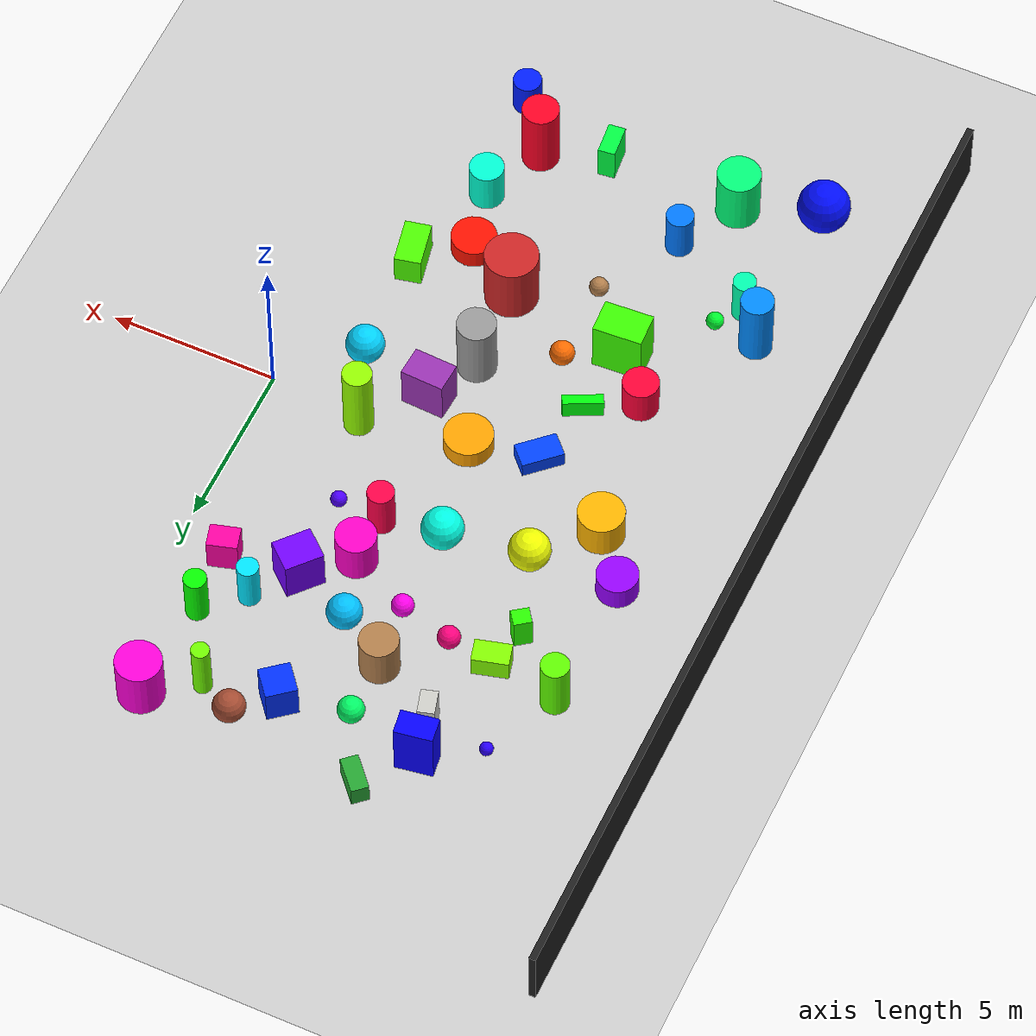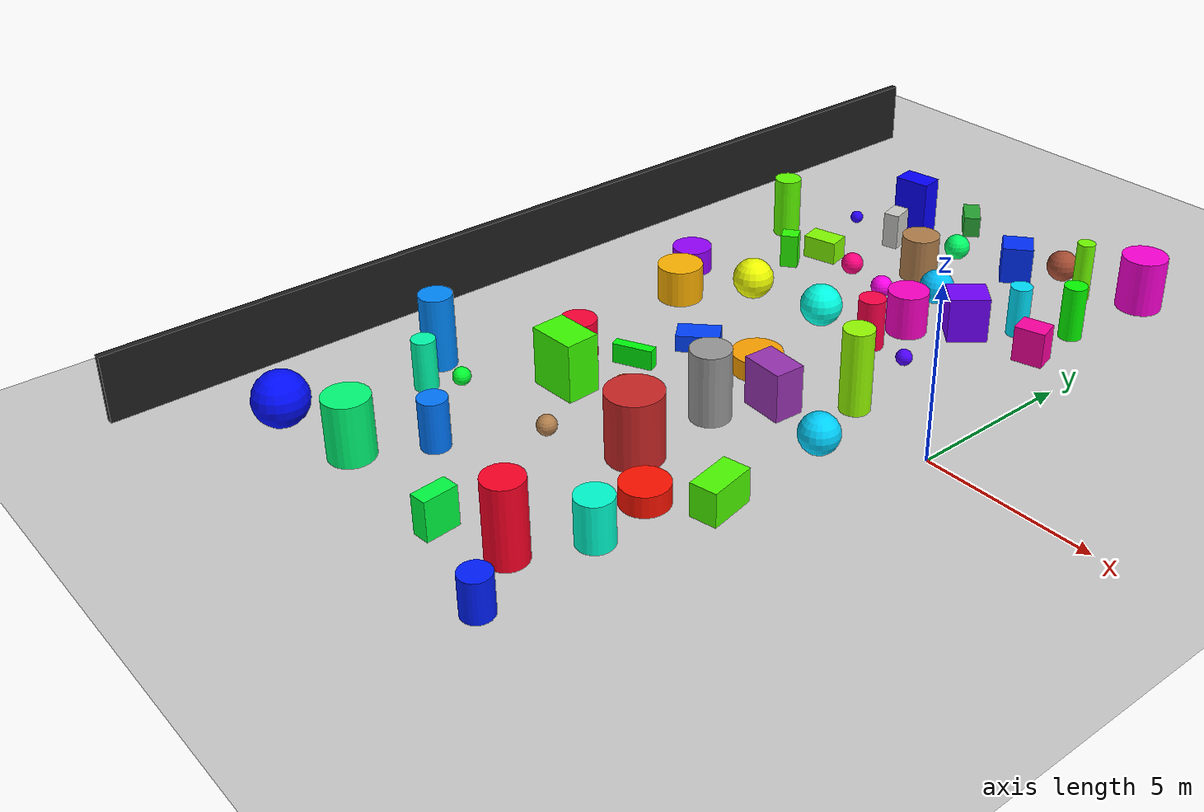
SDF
<sdf version="1.6">
 <world name="colorful_obstacle_world">
  <include><uri>model://ground_plane</uri></include>
  <include><uri>model://sun</uri></include>
  <model name="wall_south">
   <static>true</static>
   <pose>-15 0 1.0 0 0 0</pose>
   <link name="link">
    <collision name="c"><geometry><box><size>0.2 30 2.0</size></box></geometry></collision>
    <visual name="v">
     <geometry><box><size>0.2 30 2.0</size></box></geometry>
     <material>
      <script><uri>file://media/materials/scripts/gazebo.material</uri><name>Gazebo/Black</name></script>
     </material>
    </visual>
   </link>
  </model>
  <model name="obstacle_0">
   <static>true</static>
   <pose>-4.903450618988115 -5.467796159845311 0.9747297647664234 0 0 0</pose>
   <link name="link">
    <collision name="c">
     <geometry>
      <cylinder><radius>0.7912607310075801</radius><length>1.9494595295328467</length></cylinder>
     </geometry>
    </collision>
    <visual name="v">
     <geometry>
      <cylinder><radius>0.7912607310075801</radius><length>1.9494595295328467</length></cylinder>
     </geometry>
     <material>
      <script><uri>file://media/materials/scripts/gazebo.material</uri><name>Gazebo/Red</name></script>
     </material>
    </visual>
   </link>
  </model>
  <model name="obstacle_1">
   <static>true</static>
   <pose>-7.915639092148923 11.112011881021104 0.3309173274548305 0 0 0.7312801263284102</pose>
   <link name="link">
    <collision name="c">
     <geometry><box><size>0.5164150497879582 1.0709003932753725 0.661834654909661</size></box></geometry>
    </collision>
    <visual name="v">
     <geometry><box><size>0.5164150497879582 1.0709003932753725 0.661834654909661</size></box></geometry>
     <material>
      <script><uri>file://media/materials/scripts/gazebo.material</uri><name>Gazebo/Green</name></script>
     </material>
    </visual>
   </link>
  </model>
  <model name="obstacle_4">
   <static>true</static>
   <pose>-4.29777635401576 -1.2550370841254601 0.7156850672333379 0 0 3.090084387168104</pose>
   <link name="link">
    <collision name="c">
     <geometry><box><size>1.2932784040043348 0.8891995948181806 1.4313701344666758</size></box></geometry>
    </collision>
    <visual name="v">
     <geometry><box><size>1.2932784040043348 0.8891995948181806 1.4313701344666758</size></box></geometry>
     <material>
      <script><uri>file://media/materials/scripts/gazebo.material</uri><name>Gazebo/Purple</name></script>
     </material>
    </visual>
   </link>
  </model>
  <model name="obstacle_7">
   <static>true</static>
   <pose>-5.049072753003083 -2.8164600338689674 1.0385451915712363 0 0 0</pose>
   <link name="link">
    <collision name="c">
     <geometry>
      <cylinder><radius>0.573277827116216</radius><length>2.0770903831424725</length></cylinder>
     </geometry>
    </collision>
    <visual name="v">
     <geometry>
      <cylinder><radius>0.573277827116216</radius><length>2.0770903831424725</length></cylinder>
     </geometry>
     <material>
      <script><uri>file://media/materials/scripts/gazebo.material</uri><name>Gazebo/Grey</name></script>
     </material>
    </visual>
   </link>
  </model>
  <model name="obstacle_9">
   <static>true</static>
   <pose>-7.12972791184355 -6.591761434864928 0.28421537278958064 0 0 0</pose>
   <link name="link">
    <collision name="c"><geometry><sphere><radius>0.28421537278958064</radius></sphere></geometry></collision>
    <visual name="v">
     <geometry><sphere><radius>0.28421537278958064</radius></sphere></geometry>
     <material>
      <script><uri>file://media/materials/scripts/gazebo.material</uri><name>Gazebo/Wood</name></script>
     </material>
    </visual>
   </link>
  </model>
  <model name="obstacle_10">
   <static>true</static>
   <pose>-6.879492044702194 7.392906852079381 0.6924905468520671 0 0 0</pose>
   <link name="link">
    <collision name="c">
     <geometry>
      <cylinder><radius>0.5709947475166649</radius><length>1.3849810937041342</length></cylinder>
     </geometry>
    </collision>
    <visual name="v">
     <geometry>
      <cylinder><radius>0.5709947475166649</radius><length>1.3849810937041342</length></cylinder>
     </geometry>
     <material>
      <script><uri>file://media/materials/scripts/gazebo.material</uri><name>Gazebo/WoodFloor</name></script>
     </material>
    </visual>
   </link>
  </model>
  <model name="obstacle_11">
   <static>true</static>
   <pose>-8.870609132728818 8.49051728814381 0.5691840922277639 0 0 0.277794428375654</pose>
   <link name="link">
    <collision name="c">
     <geometry><box><size>0.495072684962762 0.7311331010637301 1.1383681844555278</size></box></geometry>
    </collision>
    <visual name="v">
     <geometry><box><size>0.495072684962762 0.7311331010637301 1.1383681844555278</size></box></geometry>
     <material>
      <script><uri>file://media/materials/scripts/gazebo.material</uri><name>Gazebo/CeilingTiled</name></script>
     </material>
    </visual>
   </link>
  </model>
  <model name="obstacle_14">
   <static>true</static>
   <pose>-3.8348799675712684 10.525184868427608 0.47494589489425343 0 0 0</pose>
   <link name="link">
    <collision name="c"><geometry><sphere><radius>0.47494589489425343</radius></sphere></geometry></collision>
    <visual name="v">
     <geometry><sphere><radius>0.47494589489425343</radius></sphere></geometry>
     <material>
      <script><uri>file://media/materials/scripts/gazebo.material</uri><name>Gazebo/Bricks</name></script>
     </material>
    </visual>
   </link>
  </model>
  <model name="obstacle_16">
   <static>true</static>
   <pose>-3.2222321565056795 -6.524059201168073 0.30241089847937985 0 0 0</pose>
   <link name="link">
    <collision name="c">
     <geometry>
      <cylinder><radius>0.6693281410612415</radius><length>0.6048217969587597</length></cylinder>
     </geometry>
    </collision>
    <visual name="v">
     <geometry>
      <cylinder><radius>0.6693281410612415</radius><length>0.6048217969587597</length></cylinder>
     </geometry>
     <material>
      <ambient>1 0.07058823529411762 0 1.0</ambient>
      <diffuse>1 0.07058823529411762 0 1.0</diffuse>
     </material>
    </visual>
   </link>
  </model>
  <model name="obstacle_21">
   <static>true</static>
   <pose>-7.157682839931182 -4.011880523422204 0.36426826249821365 0 0 0</pose>
   <link name="link">
    <collision name="c"><geometry><sphere><radius>0.36426826249821365</radius></sphere></geometry></collision>
    <visual name="v">
     <geometry><sphere><radius>0.36426826249821365</radius></sphere></geometry>
     <material>
      <ambient>1 0.42352941176470593 0 1.0</ambient>
      <diffuse>1 0.42352941176470593 0 1.0</diffuse>
     </material>
    </visual>
   </link>
  </model>
  <model name="obstacle_24">
   <static>true</static>
   <pose>-5.989385847194059 -0.24685178705698618 0.2957249704937639 0 0 0</pose>
   <link name="link">
    <collision name="c">
     <geometry>
      <cylinder><radius>0.7226604071419616</radius><length>0.5914499409875278</length></cylinder>
     </geometry>
    </collision>
    <visual name="v">
     <geometry>
      <cylinder><radius>0.7226604071419616</radius><length>0.5914499409875278</length></cylinder>
     </geometry>
     <material>
      <ambient>1 0.6352941176470588 0 1.0</ambient>
      <diffuse>1 0.6352941176470588 0 1.0</diffuse>
     </material>
    </visual>
   </link>
  </model>
  <model name="obstacle_25">
   <static>true</static>
   <pose>-10.594377490643883 0.8874019886822815 0.5559189496063643 0 0 0</pose>
   <link name="link">
    <collision name="c">
     <geometry>
      <cylinder><radius>0.6796305076136844</radius><length>1.1118378992127287</length></cylinder>
     </geometry>
    </collision>
    <visual name="v">
     <geometry>
      <cylinder><radius>0.6796305076136844</radius><length>1.1118378992127287</length></cylinder>
     </geometry>
     <material>
      <ambient>1 0.7058823529411764 0 1.0</ambient>
      <diffuse>1 0.7058823529411764 0 1.0</diffuse>
     </material>
    </visual>
   </link>
  </model>
  <model name="obstacle_30">
   <static>true</static>
   <pose>-9.178125538358785 2.562079408086774 0.6128212991396255 0 0 0</pose>
   <link name="link">
    <collision name="c"><geometry><sphere><radius>0.6128212991396255</radius></sphere></geometry></collision>
    <visual name="v">
     <geometry><sphere><radius>0.6128212991396255</radius></sphere></geometry>
     <material>
      <ambient>0.9411764705882353 1 0 1.0</ambient>
      <diffuse>0.9411764705882353 1 0 1.0</diffuse>
     </material>
    </visual>
   </link>
  </model>
  <model name="obstacle_35">
   <static>true</static>
   <pose>-2.858048363759572 0.3581557226500358 1.226844228479198 0 0 0</pose>
   <link name="link">
    <collision name="c">
     <geometry>
      <cylinder><radius>0.4326092372015556</radius><length>2.453688456958396</length></cylinder>
     </geometry>
    </collision>
    <visual name="v">
     <geometry>
      <cylinder><radius>0.4326092372015556</radius><length>2.453688456958396</length></cylinder>
     </geometry>
     <material>
      <ambient>0.5882352941176472 1 0 1.0</ambient>
      <diffuse>0.5882352941176472 1 0 1.0</diffuse>
     </material>
    </visual>
   </link>
  </model>
  <model name="obstacle_36">
   <static>true</static>
   <pose>-9.666450148703099 6.084782307992231 0.35592853904838884 0 0 0.26171114276346485</pose>
   <link name="link">
    <collision name="c">
     <geometry><box><size>1.0704525786526238 0.6787140310253099 0.7118570780967777</size></box></geometry>
    </collision>
    <visual name="v">
     <geometry><box><size>1.0704525786526238 0.6787140310253099 0.7118570780967777</size></box></geometry>
     <material>
      <ambient>0.5176470588235296 1 0 1.0</ambient>
      <diffuse>0.5176470588235296 1 0 1.0</diffuse>
     </material>
    </visual>
   </link>
  </model>
  <model name="obstacle_37">
   <static>true</static>
   <pose>-2.750470761163509 9.985135469432478 0.9206019093199403 0 0 0</pose>
   <link name="link">
    <collision name="c">
     <geometry>
      <cylinder><radius>0.26511309561404356</radius><length>1.8412038186398807</length></cylinder>
     </geometry>
    </collision>
    <visual name="v">
     <geometry>
      <cylinder><radius>0.26511309561404356</radius><length>1.8412038186398807</length></cylinder>
     </geometry>
     <material>
      <ambient>0.44705882352941173 1 0 1.0</ambient>
      <diffuse>0.44705882352941173 1 0 1.0</diffuse>
     </material>
    </visual>
   </link>
  </model>
  <model name="obstacle_38">
   <static>true</static>
   <pose>-11.723073514598404 6.41772675854239 0.9526029472143182 0 0 0</pose>
   <link name="link">
    <collision name="c">
     <geometry>
      <cylinder><radius>0.41404371130326817</radius><length>1.9052058944286363</length></cylinder>
     </geometry>
    </collision>
    <visual name="v">
     <geometry>
      <cylinder><radius>0.41404371130326817</radius><length>1.9052058944286363</length></cylinder>
     </geometry>
     <material>
      <ambient>0.3764705882352941 1 0 1.0</ambient>
      <diffuse>0.3764705882352941 1 0 1.0</diffuse>
     </material>
    </visual>
   </link>
  </model>
  <model name="obstacle_39">
   <static>true</static>
   <pose>-1.8596548976918221 -5.330542317407487 0.48957493002747765 0 0 1.7774144920807824</pose>
   <link name="link">
    <collision name="c">
     <geometry><box><size>1.3742544341441902 0.7874833772978775 0.9791498600549553</size></box></geometry>
    </collision>
    <visual name="v">
     <geometry><box><size>1.3742544341441902 0.7874833772978775 0.9791498600549553</size></box></geometry>
     <material>
      <ambient>0.3058823529411765 1 0 1.0</ambient>
      <diffuse>0.3058823529411765 1 0 1.0</diffuse>
     </material>
    </visual>
   </link>
  </model>
  <model name="obstacle_40">
   <static>true</static>
   <pose>-8.681199181339132 -4.7957398026556435 0.8692538034315253 0 0 0.05615220280662781</pose>
   <link name="link">
    <collision name="c">
     <geometry><box><size>1.467090281856178 1.015625908239326 1.7385076068630505</size></box></geometry>
    </collision>
    <visual name="v">
     <geometry><box><size>1.467090281856178 1.015625908239326 1.7385076068630505</size></box></geometry>
     <material>
      <ambient>0.23529411764705888 1 0 1.0</ambient>
      <diffuse>0.23529411764705888 1 0 1.0</diffuse>
     </material>
    </visual>
   </link>
  </model>
  <model name="obstacle_41">
   <static>true</static>
   <pose>-10.007644813107511 4.901586982433734 0.5326721974599139 0 0 2.2065311500129843</pose>
   <link name="link">
    <collision name="c">
     <geometry><box><size>0.4875249507501621 0.5321848356458874 1.0653443949198278</size></box></geometry>
    </collision>
    <visual name="v">
     <geometry><box><size>0.4875249507501621 0.5321848356458874 1.0653443949198278</size></box></geometry>
     <material>
      <ambient>0.16470588235294104 1 0 1.0</ambient>
      <diffuse>0.16470588235294104 1 0 1.0</diffuse>
     </material>
    </visual>
   </link>
  </model>
  <model name="obstacle_43">
   <static>true</static>
   <pose>-1.5256717788413159 7.867368636240446 0.8227146118231784 0 0 0</pose>
   <link name="link">
    <collision name="c">
     <geometry>
      <cylinder><radius>0.3338688926091794</radius><length>1.6454292236463568</length></cylinder>
     </geometry>
    </collision>
    <visual name="v">
     <geometry>
      <cylinder><radius>0.3338688926091794</radius><length>1.6454292236463568</length></cylinder>
     </geometry>
     <material>
      <ambient>0.0235294117647058 1 0 1.0</ambient>
      <diffuse>0.0235294117647058 1 0 1.0</diffuse>
     </material>
    </visual>
   </link>
  </model>
  <model name="obstacle_44">
   <static>true</static>
   <pose>-8.41675700353324 -2.659838162897117 0.3023187942179295 0 0 2.025061365115131</pose>
   <link name="link">
    <collision name="c">
     <geometry><box><size>0.30721562770138056 1.1890429840903445 0.604637588435859</size></box></geometry>
    </collision>
    <visual name="v">
     <geometry><box><size>0.30721562770138056 1.1890429840903445 0.604637588435859</size></box></geometry>
     <material>
      <ambient>0 1 0.04705882352941204 1.0</ambient>
      <diffuse>0 1 0.04705882352941204 1.0</diffuse>
     </material>
    </visual>
   </link>
  </model>
  <model name="obstacle_46">
   <static>true</static>
   <pose>-10.607099281396573 -6.911946364490519 0.2596335199203611 0 0 0</pose>
   <link name="link">
    <collision name="c"><geometry><sphere><radius>0.2596335199203611</radius></sphere></geometry></collision>
    <visual name="v">
     <geometry><sphere><radius>0.2596335199203611</radius></sphere></geometry>
     <material>
      <ambient>0 1 0.18823529411764683 1.0</ambient>
      <diffuse>0 1 0.18823529411764683 1.0</diffuse>
     </material>
    </visual>
   </link>
  </model>
  <model name="obstacle_47">
   <static>true</static>
   <pose>-5.5531273336728 -10.935673423529792 0.5698644881736914 0 0 1.6713069602277932</pose>
   <link name="link">
    <collision name="c">
     <geometry><box><size>0.9869404275487976 0.5096040743178923 1.1397289763473828</size></box></geometry>
    </collision>
    <visual name="v">
     <geometry><box><size>0.9869404275487976 0.5096040743178923 1.1397289763473828</size></box></geometry>
     <material>
      <ambient>0 1 0.2588235294117647 1.0</ambient>
      <diffuse>0 1 0.2588235294117647 1.0</diffuse>
     </material>
    </visual>
   </link>
  </model>
  <model name="obstacle_49">
   <static>true</static>
   <pose>-6.876984763720421 9.187541689341803 0.39188868128012677 0 0 0</pose>
   <link name="link">
    <collision name="c"><geometry><sphere><radius>0.39188868128012677</radius></sphere></geometry></collision>
    <visual name="v">
     <geometry><sphere><radius>0.39188868128012677</radius></sphere></geometry>
     <material>
      <ambient>0 1 0.3999999999999999 1.0</ambient>
      <diffuse>0 1 0.3999999999999999 1.0</diffuse>
     </material>
    </visual>
   </link>
  </model>
  <model name="obstacle_50">
   <static>true</static>
   <pose>-9.558379913323048 -10.906640171624947 0.8884228037856065 0 0 0</pose>
   <link name="link">
    <collision name="c">
     <geometry>
      <cylinder><radius>0.6436316761267209</radius><length>1.776845607571213</length></cylinder>
     </geometry>
    </collision>
    <visual name="v">
     <geometry>
      <cylinder><radius>0.6436316761267209</radius><length>1.776845607571213</length></cylinder>
     </geometry>
     <material>
      <ambient>0 1 0.47058823529411775 1.0</ambient>
      <diffuse>0 1 0.47058823529411775 1.0</diffuse>
     </material>
    </visual>
   </link>
  </model>
  <model name="obstacle_53">
   <static>true</static>
   <pose>-11.14794426483169 -7.699911957670887 0.74658524982691 0 0 0</pose>
   <link name="link">
    <collision name="c">
     <geometry><cylinder><radius>0.3394169805684647</radius><length>1.49317049965382</length></cylinder></geometry>
    </collision>
    <visual name="v">
     <geometry><cylinder><radius>0.3394169805684647</radius><length>1.49317049965382</length></cylinder></geometry>
     <material>
      <ambient>0 1 0.6823529411764704 1.0</ambient>
      <diffuse>0 1 0.6823529411764704 1.0</diffuse>
     </material>
    </visual>
   </link>
  </model>
  <model name="obstacle_55">
   <static>true</static>
   <pose>-2.7571544155560126 -8.39493488044194 0.6763021480405876 0 0 0</pose>
   <link name="link">
    <collision name="c">
     <geometry>
      <cylinder><radius>0.5104032043630015</radius><length>1.3526042960811753</length></cylinder>
     </geometry>
    </collision>
    <visual name="v">
     <geometry>
      <cylinder><radius>0.5104032043630015</radius><length>1.3526042960811753</length></cylinder>
     </geometry>
     <material>
      <ambient>0 1 0.8235294117647056 1.0</ambient>
      <diffuse>0 1 0.8235294117647056 1.0</diffuse>
     </material>
    </visual>
   </link>
  </model>
  <model name="obstacle_56">
   <static>true</static>
   <pose>-6.686724418479256 2.9295764532416406 0.6181281892501773 0 0 0</pose>
   <link name="link">
    <collision name="c"><geometry><sphere><radius>0.6181281892501773</radius></sphere></geometry></collision>
    <visual name="v">
     <geometry><sphere><radius>0.6181281892501773</radius></sphere></geometry>
     <material>
      <ambient>0 1 0.8941176470588235 1.0</ambient>
      <diffuse>0 1 0.8941176470588235 1.0</diffuse>
     </material>
    </visual>
   </link>
  </model>
  <model name="obstacle_59">
   <static>true</static>
   <pose>-2.6279223113654435 6.850610705014276 0.764941021038312 0 0 0</pose>
   <link name="link">
    <collision name="c">
     <geometry>
      <cylinder><radius>0.31768960259157486</radius><length>1.529882042076624</length></cylinder>
     </geometry>
    </collision>
    <visual name="v">
     <geometry>
      <cylinder><radius>0.31768960259157486</radius><length>1.529882042076624</length></cylinder>
     </geometry>
     <material>
      <ambient>0 0.8941176470588235 1 1.0</ambient>
      <diffuse>0 0.8941176470588235 1 1.0</diffuse>
     </material>
    </visual>
   </link>
  </model>
  <model name="obstacle_60">
   <static>true</static>
   <pose>-2.023969436867592 -1.824002909830245 0.568038024012756 0 0 0</pose>
   <link name="link">
    <collision name="c"><geometry><sphere><radius>0.568038024012756</radius></sphere></geometry></collision>
    <visual name="v">
     <geometry><sphere><radius>0.568038024012756</radius></sphere></geometry>
     <material>
      <ambient>0 0.8235294117647056 1 1.0</ambient>
      <diffuse>0 0.8235294117647056 1 1.0</diffuse>
     </material>
    </visual>
   </link>
  </model>
  <model name="obstacle_61">
   <static>true</static>
   <pose>-5.375933939765586 6.480713302358957 0.515744304451291 0 0 0</pose>
   <link name="link">
    <collision name="c"><geometry><sphere><radius>0.515744304451291</radius></sphere></geometry></collision>
    <visual name="v">
     <geometry><sphere><radius>0.515744304451291</radius></sphere></geometry>
     <material>
      <ambient>0 0.7529411764705882 1 1.0</ambient>
      <diffuse>0 0.7529411764705882 1 1.0</diffuse>
     </material>
    </visual>
   </link>
  </model>
  <model name="obstacle_64">
   <static>true</static>
   <pose>-11.928732317024014 -6.762260210160146 1.1013993177631807 0 0 0</pose>
   <link name="link">
    <collision name="c">
     <geometry>
      <cylinder><radius>0.48523813500543955</radius><length>2.2027986355263613</length></cylinder>
     </geometry>
    </collision>
    <visual name="v">
     <geometry>
      <cylinder><radius>0.48523813500543955</radius><length>2.2027986355263613</length></cylinder>
     </geometry>
     <material>
      <ambient>0 0.5411764705882351 1 1.0</ambient>
      <diffuse>0 0.5411764705882351 1 1.0</diffuse>
     </material>
    </visual>
   </link>
  </model>
  <model name="obstacle_65">
   <static>true</static>
   <pose>-8.534033255315771 -9.069541155267501 0.7308941327298949 0 0 0</pose>
   <link name="link">
    <collision name="c">
     <geometry>
      <cylinder><radius>0.40595374409733187</radius><length>1.4617882654597898</length></cylinder>
     </geometry>
    </collision>
    <visual name="v">
     <geometry>
      <cylinder><radius>0.40595374409733187</radius><length>1.4617882654597898</length></cylinder>
     </geometry>
     <material>
      <ambient>0 0.47058823529411775 1 1.0</ambient>
      <diffuse>0 0.47058823529411775 1 1.0</diffuse>
     </material>
    </visual>
   </link>
  </model>
  <model name="obstacle_68">
   <static>true</static>
   <pose>-7.988560681484515 -0.6510499418724738 0.2534570576735624 0 0 0.7545502177018751</pose>
   <link name="link">
    <collision name="c">
     <geometry><box><size>1.2568226405057346 0.7450783001839563 0.5069141153471248</size></box></geometry>
    </collision>
    <visual name="v">
     <geometry><box><size>1.2568226405057346 0.7450783001839563 0.5069141153471248</size></box></geometry>
     <material>
      <ambient>0 0.2588235294117647 1 1.0</ambient>
      <diffuse>0 0.2588235294117647 1 1.0</diffuse>
     </material>
    </visual>
   </link>
  </model>
  <model name="obstacle_69">
   <static>true</static>
   <pose>-4.879189284578182 9.586061336729486 0.578510797063936 0 0 0.6881705408708432</pose>
   <link name="link">
    <collision name="c">
     <geometry><box><size>0.9197537496714745 0.9222067024388136 1.157021594127872</size></box></geometry>
    </collision>
    <visual name="v">
     <geometry><box><size>0.9197537496714745 0.9222067024388136 1.157021594127872</size></box></geometry>
     <material>
      <ambient>0 0.18823529411764683 1 1.0</ambient>
      <diffuse>0 0.18823529411764683 1 1.0</diffuse>
     </material>
    </visual>
   </link>
  </model>
  <model name="obstacle_70">
   <static>true</static>
   <pose>-2.435498238829794 -11.882463217947851 0.570090661380665 0 0 0</pose>
   <link name="link">
    <collision name="c">
     <geometry>
      <cylinder><radius>0.42120162485587487</radius><length>1.14018132276133</length></cylinder>
     </geometry>
    </collision>
    <visual name="v">
     <geometry>
      <cylinder><radius>0.42120162485587487</radius><length>1.14018132276133</length></cylinder>
     </geometry>
     <material>
      <ambient>0 0.11764705882352944 1 1.0</ambient>
      <diffuse>0 0.11764705882352944 1 1.0</diffuse>
     </material>
    </visual>
   </link>
  </model>
  <model name="obstacle_71">
   <static>true</static>
   <pose>-11.963917480929334 -11.545603070126862 0.7802141088122077 0 0 0</pose>
   <link name="link">
    <collision name="c"><geometry><sphere><radius>0.7802141088122077</radius></sphere></geometry></collision>
    <visual name="v">
     <geometry><sphere><radius>0.7802141088122077</radius></sphere></geometry>
     <material>
      <ambient>0 0.0470588235294116 1 1.0</ambient>
      <diffuse>0 0.0470588235294116 1 1.0</diffuse>
     </material>
    </visual>
   </link>
  </model>
  <model name="obstacle_72">
   <static>true</static>
   <pose>-9.11844819084152 9.693982080730436 0.9222221426206227 0 0 0.15667329170219155</pose>
   <link name="link">
    <collision name="c">
     <geometry><box><size>1.1127926194920308 0.7234956179182417 1.8444442852412455</size></box></geometry>
    </collision>
    <visual name="v">
     <geometry><box><size>1.1127926194920308 0.7234956179182417 1.8444442852412455</size></box></geometry>
     <material>
      <ambient>0.0235294117647058 0 1 1.0</ambient>
      <diffuse>0.0235294117647058 0 1 1.0</diffuse>
     </material>
    </visual>
   </link>
  </model>
  <model name="obstacle_74">
   <static>true</static>
   <pose>-10.709078111081912 8.669358905692949 0.2000361601286657 0 0 0</pose>
   <link name="link">
    <collision name="c"><geometry><sphere><radius>0.2000361601286657</radius></sphere></geometry></collision>
    <visual name="v">
     <geometry><sphere><radius>0.2000361601286657</radius></sphere></geometry>
     <material>
      <ambient>0.16470588235294148 0 1 1.0</ambient>
      <diffuse>0.16470588235294148 0 1 1.0</diffuse>
     </material>
    </visual>
   </link>
  </model>
  <model name="obstacle_76">
   <static>true</static>
   <pose>-3.5325912588203785 3.0352891000949214 0.23810173041638966 0 0 0</pose>
   <link name="link">
    <collision name="c"><geometry><sphere><radius>0.23810173041638966</radius></sphere></geometry></collision>
    <visual name="v">
     <geometry><sphere><radius>0.23810173041638966</radius></sphere></geometry>
     <material>
      <ambient>0.30588235294117716 0 1 1.0</ambient>
      <diffuse>0.30588235294117716 0 1 1.0</diffuse>
     </material>
    </visual>
   </link>
  </model>
  <model name="obstacle_78">
   <static>true</static>
   <pose>-3.581627808830497 5.669460533878059 0.6820179792744875 0 0 0.8509024062958834</pose>
   <link name="link">
    <collision name="c">
     <geometry><box><size>1.158466173197453 0.9886747870364914 1.364035958548975</size></box></geometry>
    </collision>
    <visual name="v">
     <geometry><box><size>1.158466173197453 0.9886747870364914 1.364035958548975</size></box></geometry>
     <material>
      <ambient>0.44705882352941195 0 1 1.0</ambient>
      <diffuse>0.44705882352941195 0 1 1.0</diffuse>
     </material>
    </visual>
   </link>
  </model>
  <model name="obstacle_80">
   <static>true</static>
   <pose>-11.760175515093819 2.3711146283094315 0.38814258581662764 0 0 0</pose>
   <link name="link">
    <collision name="c">
     <geometry>
      <cylinder><radius>0.6062293769981756</radius><length>0.7762851716332553</length></cylinder>
     </geometry>
    </collision>
    <visual name="v">
     <geometry>
      <cylinder><radius>0.6062293769981756</radius><length>0.7762851716332553</length></cylinder>
     </geometry>
     <material>
      <ambient>0.5882352941176476 0 1 1.0</ambient>
      <diffuse>0.5882352941176476 0 1 1.0</diffuse>
     </material>
    </visual>
   </link>
  </model>
  <model name="obstacle_87">
   <static>true</static>
   <pose>-6.692878170822818 5.5224458510477135 0.32787802314404724 0 0 0</pose>
   <link name="link">
    <collision name="c"><geometry><sphere><radius>0.32787802314404724</radius></sphere></geometry></collision>
    <visual name="v">
     <geometry><sphere><radius>0.32787802314404724</radius></sphere></geometry>
     <material>
      <ambient>1 0 0.9176470588235297 1.0</ambient>
      <diffuse>1 0 0.9176470588235297 1.0</diffuse>
     </material>
    </visual>
   </link>
  </model>
  <model name="obstacle_88">
   <static>true</static>
   <pose>-1.3285300599611478 10.911304270238208 0.8357165585659772 0 0 0</pose>
   <link name="link">
    <collision name="c">
     <geometry>
      <cylinder><radius>0.6706250575367996</radius><length>1.6714331171319543</length></cylinder>
     </geometry>
    </collision>
    <visual name="v">
     <geometry>
      <cylinder><radius>0.6706250575367996</radius><length>1.6714331171319543</length></cylinder>
     </geometry>
     <material>
      <ambient>1 0 0.8470588235294114 1.0</ambient>
      <diffuse>1 0 0.8470588235294114 1.0</diffuse>
     </material>
    </visual>
   </link>
  </model>
  <model name="obstacle_89">
   <static>true</static>
   <pose>-4.808683901929816 4.542346407167518 0.6570441338235404 0 0 0</pose>
   <link name="link">
    <collision name="c">
     <geometry>
      <cylinder><radius>0.5964378645935621</radius><length>1.3140882676470809</length></cylinder>
     </geometry>
    </collision>
    <visual name="v">
     <geometry>
      <cylinder><radius>0.5964378645935621</radius><length>1.3140882676470809</length></cylinder>
     </geometry>
     <material><ambient>1 0 0.776470588235294 1.0</ambient><diffuse>1 0 0.776470588235294 1.0</diffuse></material>
    </visual>
   </link>
  </model>
  <model name="obstacle_91">
   <static>true</static>
   <pose>-1.439590736382275 5.976795289803292 0.5346091954195317 0 0 1.8511645246959276</pose>
   <link name="link">
    <collision name="c">
     <geometry><box><size>0.6926002479699682 0.8830218245552035 1.0692183908390633</size></box></geometry>
    </collision>
    <visual name="v">
     <geometry><box><size>0.6926002479699682 0.8830218245552035 1.0692183908390633</size></box></geometry>
     <material>
      <ambient>1 0 0.6352941176470592 1.0</ambient>
      <diffuse>1 0 0.6352941176470592 1.0</diffuse>
     </material>
    </visual>
   </link>
  </model>
  <model name="obstacle_93">
   <static>true</static>
   <pose>-8.294660662503212 5.927610076972719 0.3356612870596144 0 0 0</pose>
   <link name="link">
    <collision name="c"><geometry><sphere><radius>0.3356612870596144</radius></sphere></geometry></collision>
    <visual name="v">
     <geometry><sphere><radius>0.3356612870596144</radius></sphere></geometry>
     <material>
      <ambient>1 0 0.49411764705882355 1.0</ambient>
      <diffuse>1 0 0.49411764705882355 1.0</diffuse>
     </material>
    </visual>
   </link>
  </model>
  <model name="obstacle_96">
   <static>true</static>
   <pose>-4.88764982464631 3.1017805100762406 0.7662932791857502 0 0 0</pose>
   <link name="link">
    <collision name="c">
     <geometry>
      <cylinder><radius>0.39193371457119874</radius><length>1.5325865583715004</length></cylinder>
     </geometry>
    </collision>
    <visual name="v">
     <geometry>
      <cylinder><radius>0.39193371457119874</radius><length>1.5325865583715004</length></cylinder>
     </geometry>
     <material>
      <ambient>1 0 0.2823529411764705 1.0</ambient>
      <diffuse>1 0 0.2823529411764705 1.0</diffuse>
     </material>
    </visual>
   </link>
  </model>
  <model name="obstacle_97">
   <static>true</static>
   <pose>-9.811154490987507 -3.5167724760798436 0.5823130223956299 0 0 0</pose>
   <link name="link">
    <collision name="c">
     <geometry>
      <cylinder><radius>0.5346258941314408</radius><length>1.1646260447912598</length></cylinder>
     </geometry>
    </collision>
    <visual name="v">
     <geometry>
      <cylinder><radius>0.5346258941314408</radius><length>1.1646260447912598</length></cylinder>
     </geometry>
     <material>
      <ambient>1 0 0.21176470588235308 1.0</ambient>
      <diffuse>1 0 0.21176470588235308 1.0</diffuse>
     </material>
    </visual>
   </link>
  </model>
  <model name="obstacle_98">
   <static>true</static>
   <pose>-3.5890912685250598 -10.293679430102436 1.1335711290324353 0 0 0</pose>
   <link name="link">
    <collision name="c">
     <geometry>
      <cylinder><radius>0.5475030299031006</radius><length>2.2671422580648706</length></cylinder>
     </geometry>
    </collision>
    <visual name="v">
     <geometry>
      <cylinder><radius>0.5475030299031006</radius><length>2.2671422580648706</length></cylinder>
     </geometry>
     <material>
      <ambient>1 0 0.14117647058823568 1.0</ambient>
      <diffuse>1 0 0.14117647058823568 1.0</diffuse>
     </material>
    </visual>
   </link>
  </model>
 </world>
</sdf>
